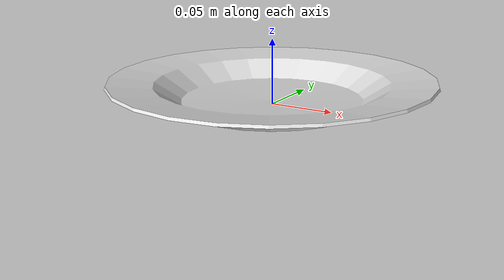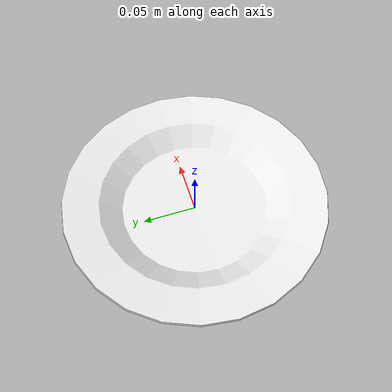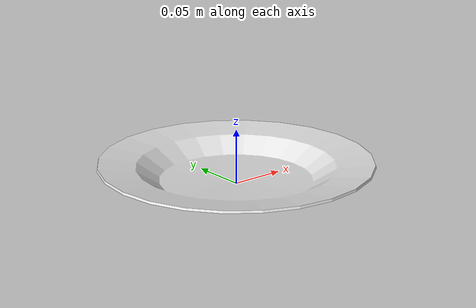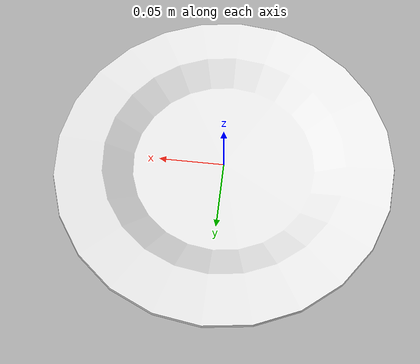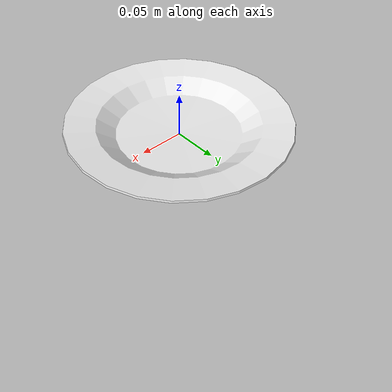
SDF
<?xml version='1.0'?>
<sdf version="1.4">
	<model name="soup_plate">
		<static>1</static>
		<link name="link">
			<visual name="mesh">
				<geometry>
					<mesh>
						<uri>model://meshes/soup_plate.dae</uri>
					</mesh>
				</geometry>
			</visual>
			<collision name="collider">
				<pose>0 0 0.01 0 0 0</pose>
				<geometry>
					<cylinder>
						<radius>0.124</radius>
						<length>0.02</length>
					</cylinder>
				</geometry>
			</collision>
		</link>
	</model>
</sdf>
